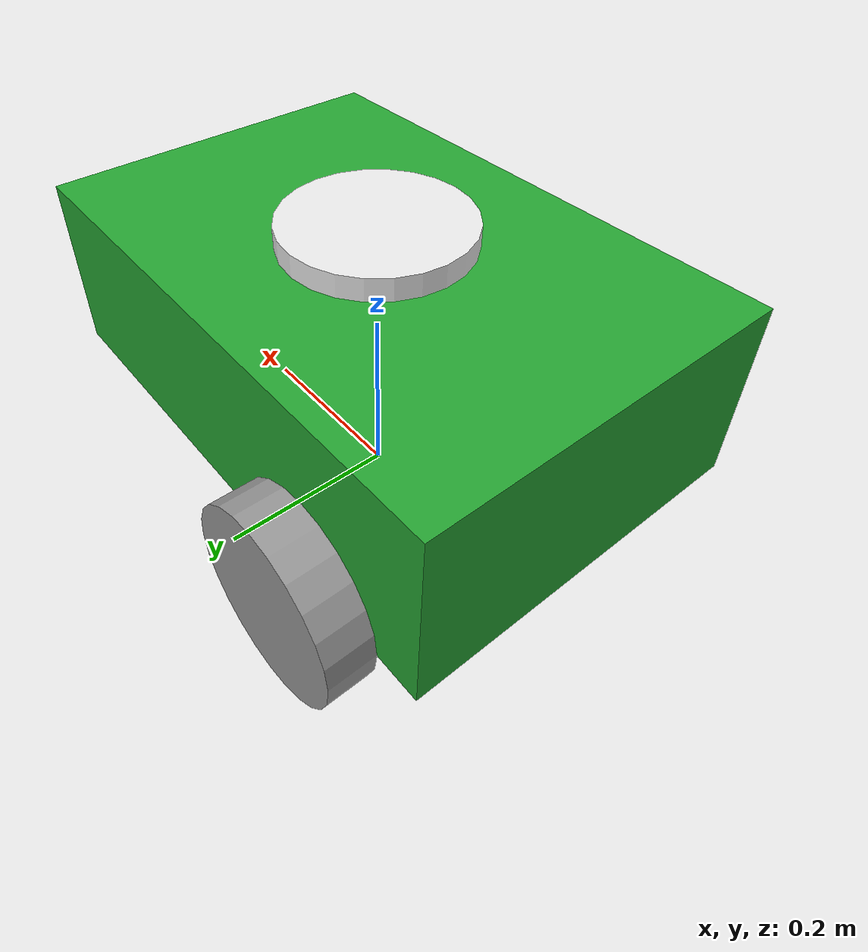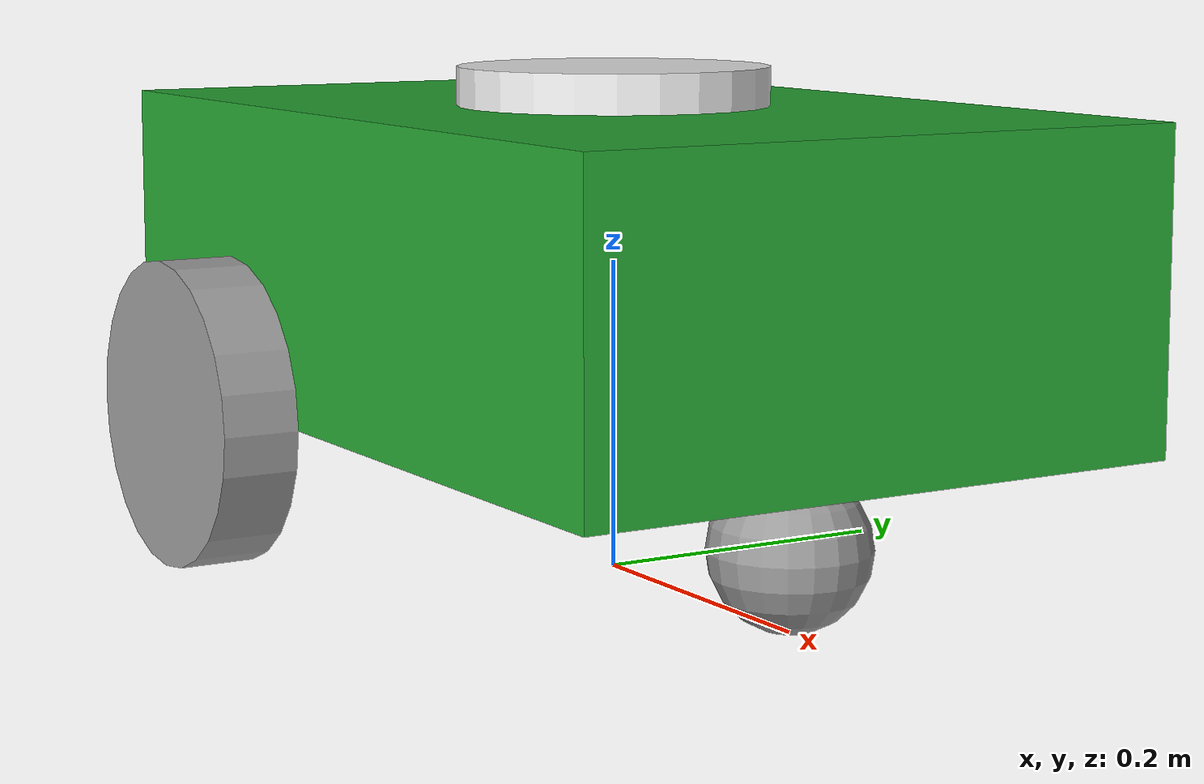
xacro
<?xml version="1.0"?>
<robot xmlns:xacro="http://www.ros.org/wiki/xacro">

    <xacro:property name="base_length" value="0.6" />
    <xacro:property name="base_width"  value="0.4" />
    <xacro:property name="base_height" value="0.2" />
    <xacro:property name="wheel_radius" value="0.1" />
    <xacro:property name="wheel_length" value="0.05" />

    <link name="base_footprint" />

    <link name= "base_link">
        <visual>
            <geometry>
                <box size="${base_length} ${base_width} ${base_height}" />
            </geometry>
            <origin xyz="0 0 ${base_height / 2.0}" rpy="0 0 0" />
            <material name ="green" />
        </visual>
        <collision>
            <geometry>
                <box size="${base_length} ${base_width} ${base_height}" />
            </geometry>
            <origin xyz="0 0 ${base_height / 2.0}" rpy="0 0 0" />
        </collision>

        <xacro:box_inertia m="5.0" l="${base_length}" w="${base_width}" h="${base_height}"
                            xyz="0 0 ${base_height / 2.0}" rpy="0 0 0" />
    </link>

    <link name="lidar_link">
        <visual>
            <geometry>
                <cylinder radius = "${wheel_radius}" length="${wheel_length}" />
            </geometry>
            <origin xyz="0 0 0" rpy="0 0 0" />
            <material name="white" />
        </visual>
        <collision>
                <geometry>
                    <cylinder radius = "${wheel_radius}" length="${wheel_length}" />
                </geometry>
                <origin xyz="0 0 0" rpy="${pi / 2.0} 0 0" />
            </collision>
            <xacro:cylinder_inertia m="1.0" r="${wheel_radius}" h="${wheel_length}"
                                xyz="0 0 0" rpy="${pi / 2.0} 0 0" />

    </link>

    <xacro:macro name="wheel_link" params="prefix">
        <link name="${prefix}_wheel_link">
            <visual>
                <geometry>
                    <cylinder radius = "${wheel_radius}" length="${wheel_length}" />
                </geometry>
                <origin xyz="0 0 0" rpy="${pi / 2.0} 0 0" />
                <material name="grey" />
            </visual>
            <collision>
                <geometry>
                    <cylinder radius = "${wheel_radius}" length="${wheel_length}" />
                </geometry>
                <origin xyz="0 0 0" rpy="${pi / 2.0} 0 0" />
            </collision>
            <xacro:cylinder_inertia m="1.0" r="${wheel_radius}" h="${wheel_length}"
                                xyz="0 0 0" rpy="${pi / 2.0} 0 0" />
        </link>
    </xacro:macro>

    <xacro:wheel_link prefix="left" />
    <xacro:wheel_link prefix="right" />

    <link name="caster_wheel_link">
        <visual>
            <geometry>
                <sphere radius="${(wheel_radius) / 2.0}" />
            </geometry>
            <origin xyz="0 0 0" rpy=" 0 0 0"/>
            <material name="grey" />
        </visual>
        <collision>
            <geometry>
                <sphere radius="${(wheel_radius) / 2.0}" />
            </geometry>
            <origin xyz="0 0 0" rpy=" 0 0 0"/>
        </collision>
        <xacro:sphere_inertia m="0.5" r="${(wheel_radius) / 2.0}" xyz="0 0 0" rpy="0 0 0"/>
    </link>

    <joint name="base_joint" type="fixed">
        <parent link ="base_footprint" />
        <child link= "base_link" />
        <origin xyz="0 0 ${wheel_radius}" rpy="0 0 0" />
    </joint>

    <joint  name="base_lidar_joint" type="fixed">
        <parent link="base_link" />
        <child link="lidar_link" />
        <origin xyz="0 0 ${(base_height)}" rpy="0 0 0" />
    </joint>

    <joint name="base_left_wheel_joint" type="continuous">
        <parent link= "base_link" />
        <child link="left_wheel_link" />
        <origin xyz= "${-base_length / 4.0} ${(base_width + wheel_length) / 2.0} 0" rpy= "0 0 0" />
        <axis xyz="0 1 0"/>
    </joint>

    <joint name="base_right_wheel_joint" type="continuous">
        <parent link= "base_link" />
        <child link="right_wheel_link" />
        <origin xyz= "${-base_length / 4.0} ${-(base_width + wheel_length) / 2.0} 0" rpy= "0 0 0" />
        <axis xyz="0 1 0"/>
    </joint>

    <joint name="base_caster_wheel_joint" type="fixed">
        <parent link = "base_link" />
        <child link ="caster_wheel_link" />
        <origin xyz= "${base_length / 3.0} 0 ${-wheel_radius / 2.0}" rpy= "0 0 0"/>
    </joint>

</robot>
